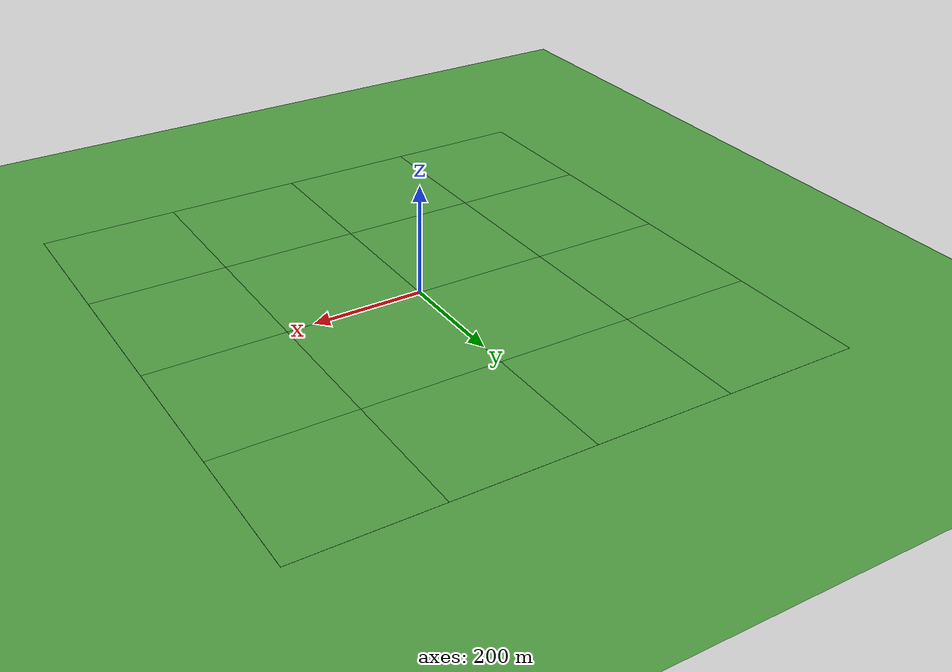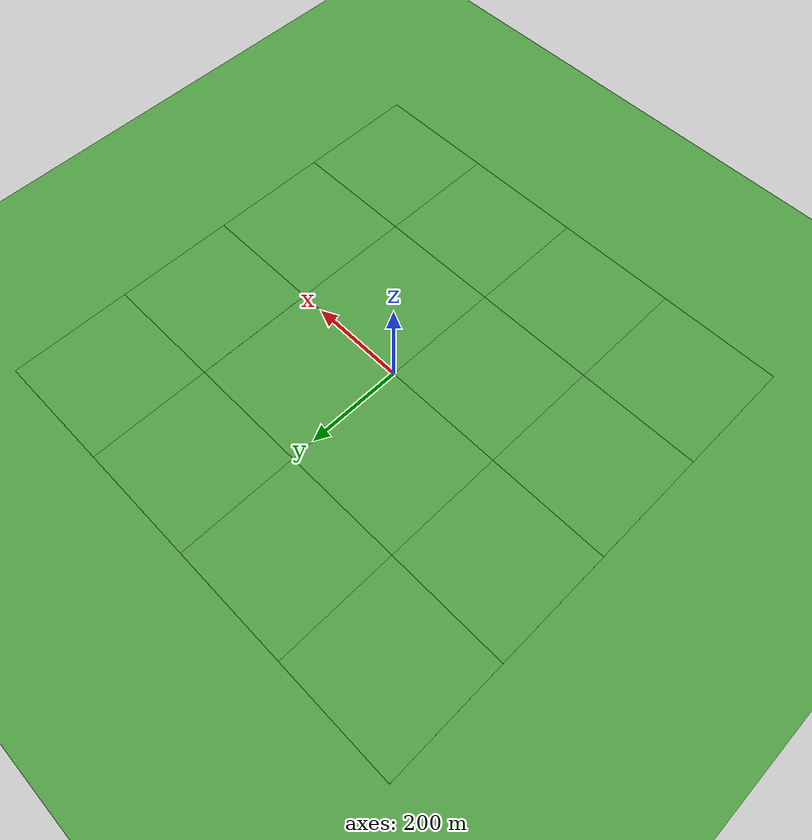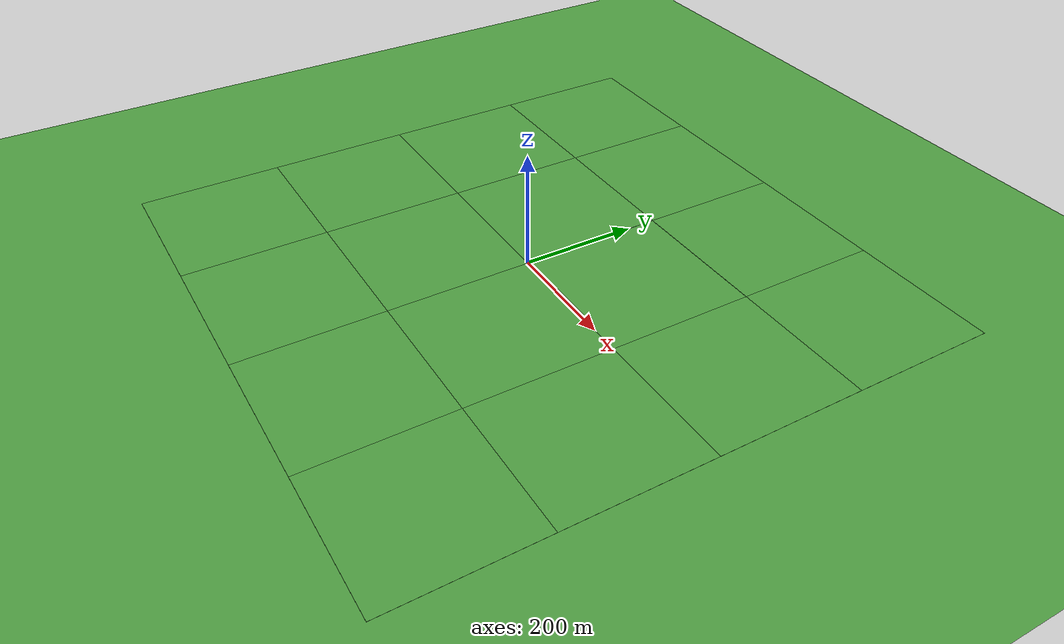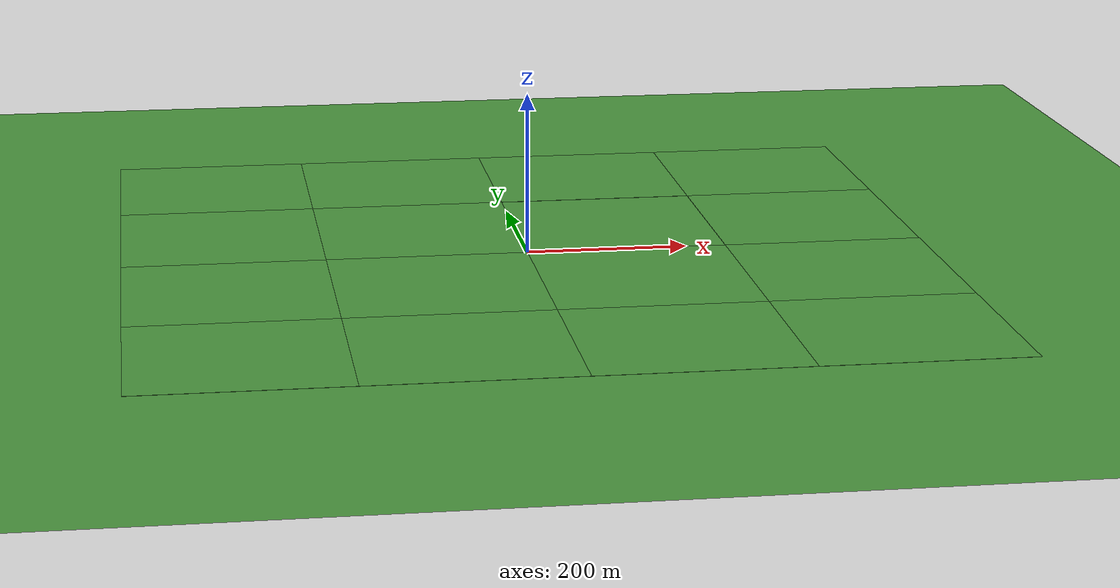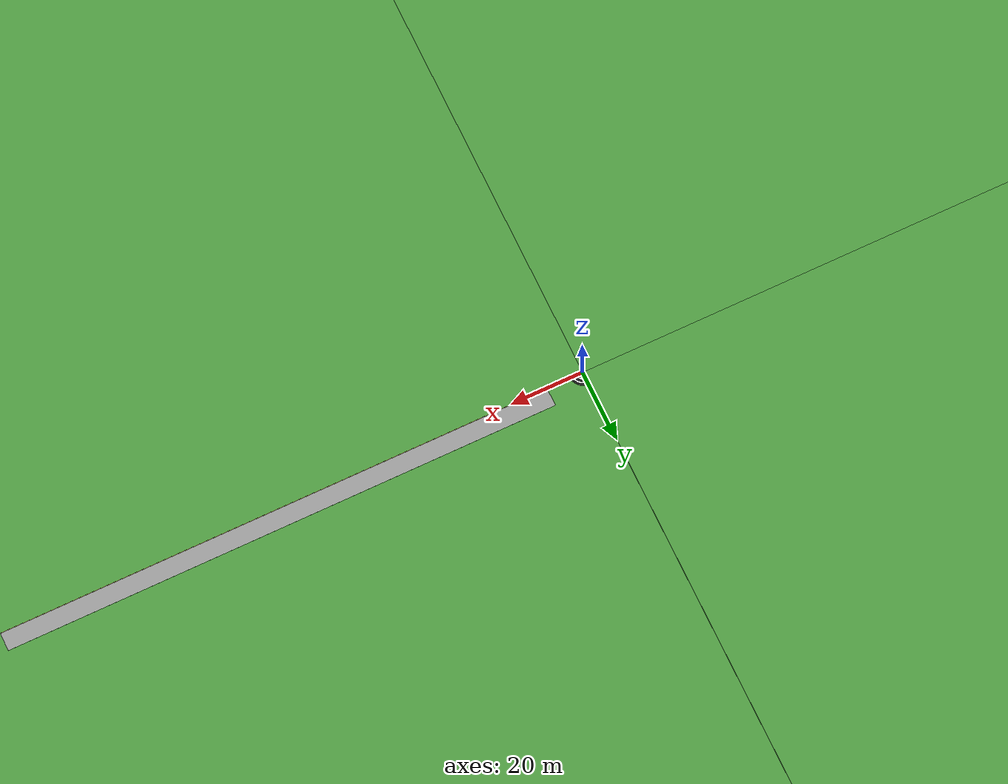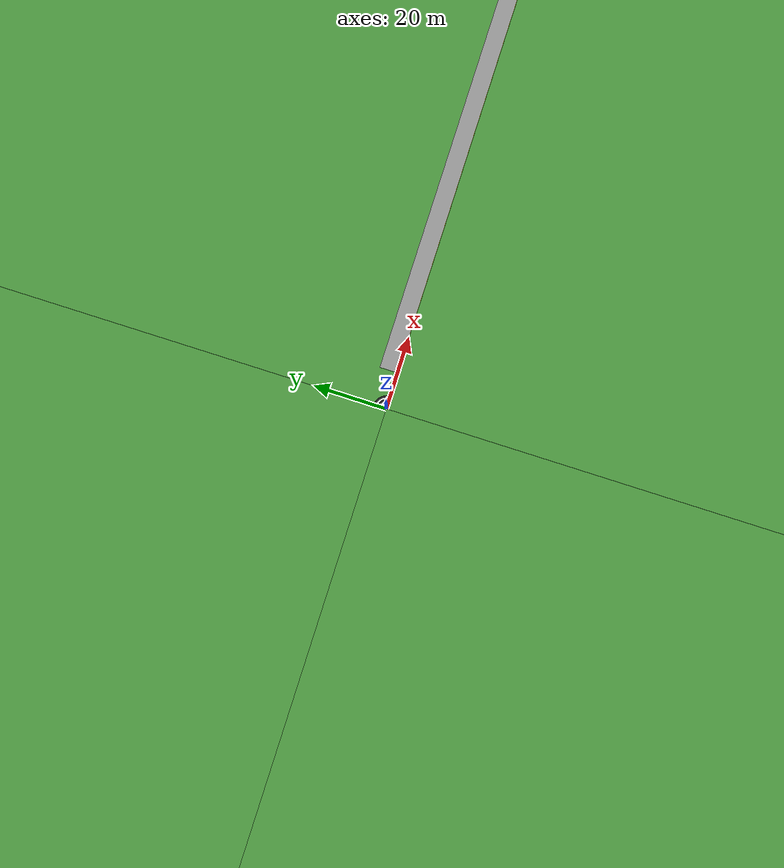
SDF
<?xml version="1.0" ?>
<sdf version="1.4">
  <world name="fw_playground">
    <!-- Place user camera -->
    <gui>
      <camera name="user_camera">
        <pose>-11.660200 -5.942800 6.053900 0.000000 0.443643 0.352194</pose>
      </camera>
    </gui>
    <scene>
      <ambient>0.7 0.7 0.7 1.0</ambient>
      <grid>false</grid>
      <sky>
        <clouds>
          <speed>4</speed>
        </clouds>
      </sky>
    </scene>

    <!-- Only one ROS interface plugin is required per world, as any other plugin can connect a Gazebo
         topic to a ROS topic (or vise versa). -->
    <plugin name="ros_interface_plugin" filename="librotors_gazebo_ros_interface_plugin.so"/>

    <spherical_coordinates>
      <surface_model>EARTH_WGS84</surface_model>
      <latitude_deg>0.0</latitude_deg>
      <longitude_deg>0.0</longitude_deg>
      <elevation>500.0</elevation>
      <heading_deg>180</heading_deg>
    </spherical_coordinates>

    <physics type='ode'>
      <ode>
        <solver>
          <type>quick</type>
          <iters>75</iters>
          <sor>1.3</sor>
        </solver>
        <constraints>
          <cfm>0</cfm>
          <erp>0.2</erp>
          <contact_max_correcting_vel>100</contact_max_correcting_vel>
          <contact_surface_layer>0.001</contact_surface_layer>
        </constraints>
      </ode>
      <max_step_size>0.004</max_step_size>
      <real_time_factor>1</real_time_factor>
      <real_time_update_rate>250</real_time_update_rate>
      <gravity>0 0 -9.8</gravity>
    </physics>

    <!-- Light Source -->
    <light type="directional" name="sun">
      <cast_shadows>false</cast_shadows>
      <pose>0 0 300 0 0 0</pose>
      <diffuse>0.8 0.8 0.8 1</diffuse>
      <specular>0.0 0.0 0.0 1</specular>
      <attenuation>
        <range>1000</range>
        <constant>0.9</constant>
        <linear>0.01</linear>
        <quadratic>0.001</quadratic>
      </attenuation>
      <direction>0.2 0.2 -0.9</direction>
    </light>

    <!-- Ground -->
    <model name="ground_collision_plane">
      <static>true</static>
        <link name='link'>
          <collision name='collision'>
            <geometry>
              <plane>
                <normal>0 0 1</normal>
                <size>1000 1000</size>
              </plane>
            </geometry>
            <surface>
              <friction>
                <ode>
                  <mu>0.2</mu>
                  <mu2>.2</mu2>
                </ode>
              </friction>
              <contact>
                <ode>
                  <kp>1000000</kp>
                  <kd>1</kd>
                </ode>
              </contact>
            </surface>
          </collision>
	</link>
    </model>

    <model name="grass_takeoff_plane">
      <static>true</static>
        <link name='link'>
          <visual name='visual_1'>
            <pose>125 125 0 0 0 0</pose>
            <cast_shadows>false</cast_shadows>
            <geometry>
              <plane>
                <normal>0 0 1</normal>
                <size>250 250</size>
              </plane>
            </geometry>
            <material>
              <script>
                <uri>model://grass_plane/materials/scripts</uri>
                <uri>model://grass_plane/materials/textures</uri>
                <name>vrc/grass</name>
              </script>
            </material>
          </visual>
          <visual name='visual_2'>
            <pose>-125 125 0 0 0 0</pose>
            <cast_shadows>false</cast_shadows>
            <geometry>
              <plane>
                <normal>0 0 1</normal>
                <size>250 250</size>
              </plane>
            </geometry>
            <material>
              <script>
                <uri>model://grass_plane/materials/scripts</uri>
                <uri>model://grass_plane/materials/textures</uri>
                <name>vrc/grass</name>
              </script>
            </material>
          </visual>
          <visual name='visual_3'>
            <pose>-125 -125 0 0 0 0</pose>
            <cast_shadows>false</cast_shadows>
            <geometry>
              <plane>
                <normal>0 0 1</normal>
                <size>250 250</size>
              </plane>
            </geometry>
            <material>
              <script>
                <uri>model://grass_plane/materials/scripts</uri>
                <uri>model://grass_plane/materials/textures</uri>
                <name>vrc/grass</name>
              </script>
            </material>
          </visual>
          <visual name='visual_4'>
            <pose>125 -125 0 0 0 0</pose>
            <cast_shadows>false</cast_shadows>
            <geometry>
              <plane>
                <normal>0 0 1</normal>
                <size>250 250</size>
              </plane>
            </geometry>
            <material>
              <script>
                <uri>model://grass_plane/materials/scripts</uri>
                <uri>model://grass_plane/materials/textures</uri>
                <name>vrc/grass</name>
              </script>
            </material>
          </visual>
          <visual name='visual_5'>
            <pose>375 125 0 0 0 0</pose>
            <cast_shadows>false</cast_shadows>
            <geometry>
              <plane>
                <normal>0 0 1</normal>
                <size>250 250</size>
              </plane>
            </geometry>
            <material>
              <script>
                <uri>model://grass_plane/materials/scripts</uri>
                <uri>model://grass_plane/materials/textures</uri>
                <name>vrc/grass</name>
              </script>
            </material>
          </visual>
          <visual name='visual_6'>
            <pose>375 375 0 0 0 0</pose>
            <cast_shadows>false</cast_shadows>
            <geometry>
              <plane>
                <normal>0 0 1</normal>
                <size>250 250</size>
              </plane>
            </geometry>
            <material>
              <script>
                <uri>model://grass_plane/materials/scripts</uri>
                <uri>model://grass_plane/materials/textures</uri>
                <name>vrc/grass</name>
              </script>
            </material>
          </visual>
          <visual name='visual_7'>
            <pose>125 375 0 0 0 0</pose>
            <cast_shadows>false</cast_shadows>
            <geometry>
              <plane>
                <normal>0 0 1</normal>
                <size>250 250</size>
              </plane>
            </geometry>
            <material>
              <script>
                <uri>model://grass_plane/materials/scripts</uri>
                <uri>model://grass_plane/materials/textures</uri>
                <name>vrc/grass</name>
              </script>
            </material>
          </visual>
          <visual name='visual_8'>
            <pose>-125 375 0 0 0 0</pose>
            <cast_shadows>false</cast_shadows>
            <geometry>
              <plane>
                <normal>0 0 1</normal>
                <size>250 250</size>
              </plane>
            </geometry>
            <material>
              <script>
                <uri>model://grass_plane/materials/scripts</uri>
                <uri>model://grass_plane/materials/textures</uri>
                <name>vrc/grass</name>
              </script>
            </material>
          </visual>
          <visual name='visual_9'>
            <pose>-375 375 0 0 0 0</pose>
            <cast_shadows>false</cast_shadows>
            <geometry>
              <plane>
                <normal>0 0 1</normal>
                <size>250 250</size>
              </plane>
            </geometry>
            <material>
              <script>
                <uri>model://grass_plane/materials/scripts</uri>
                <uri>model://grass_plane/materials/textures</uri>
                <name>vrc/grass</name>
              </script>
            </material>
          </visual>
          <visual name='visual_10'>
            <pose>-375 125 0 0 0 0</pose>
            <cast_shadows>false</cast_shadows>
            <geometry>
              <plane>
                <normal>0 0 1</normal>
                <size>250 250</size>
              </plane>
            </geometry>
            <material>
              <script>
                <uri>model://grass_plane/materials/scripts</uri>
                <uri>model://grass_plane/materials/textures</uri>
                <name>vrc/grass</name>
              </script>
            </material>
          </visual>
          <visual name='visual_11'>
            <pose>-375 -125 0 0 0 0</pose>
            <cast_shadows>false</cast_shadows>
            <geometry>
              <plane>
                <normal>0 0 1</normal>
                <size>250 250</size>
              </plane>
            </geometry>
            <material>
              <script>
                <uri>model://grass_plane/materials/scripts</uri>
                <uri>model://grass_plane/materials/textures</uri>
                <name>vrc/grass</name>
              </script>
            </material>
          </visual>
          <visual name='visual_12'>
            <pose>-375 -375 0 0 0 0</pose>
            <cast_shadows>false</cast_shadows>
            <geometry>
              <plane>
                <normal>0 0 1</normal>
                <size>250 250</size>
              </plane>
            </geometry>
            <material>
              <script>
                <uri>model://grass_plane/materials/scripts</uri>
                <uri>model://grass_plane/materials/textures</uri>
                <name>vrc/grass</name>
              </script>
            </material>
          </visual>
          <visual name='visual_13'>
            <pose>-125 -375 0 0 0 0</pose>
            <cast_shadows>false</cast_shadows>
            <geometry>
              <plane>
                <normal>0 0 1</normal>
                <size>250 250</size>
              </plane>
            </geometry>
            <material>
              <script>
                <uri>model://grass_plane/materials/scripts</uri>
                <uri>model://grass_plane/materials/textures</uri>
                <name>vrc/grass</name>
              </script>
            </material>
          </visual>
          <visual name='visual_14'>
            <pose>125 -375 0 0 0 0</pose>
            <cast_shadows>false</cast_shadows>
            <geometry>
              <plane>
                <normal>0 0 1</normal>
                <size>250 250</size>
              </plane>
            </geometry>
            <material>
              <script>
                <uri>model://grass_plane/materials/scripts</uri>
                <uri>model://grass_plane/materials/textures</uri>
                <name>vrc/grass</name>
              </script>
            </material>
          </visual>
          <visual name='visual_15'>
            <pose>375 -375 0 0 0 0</pose>
            <cast_shadows>false</cast_shadows>
            <geometry>
              <plane>
                <normal>0 0 1</normal>
                <size>250 250</size>
              </plane>
            </geometry>
            <material>
              <script>
                <uri>model://grass_plane/materials/scripts</uri>
                <uri>model://grass_plane/materials/textures</uri>
                <name>vrc/grass</name>
              </script>
            </material>
          </visual>
          <visual name='visual_16'>
            <pose>375 -125 0 0 0 0</pose>
            <cast_shadows>false</cast_shadows>
            <geometry>
              <plane>
                <normal>0 0 1</normal>
                <size>250 250</size>
              </plane>
            </geometry>
            <material>
              <script>
                <uri>model://grass_plane/materials/scripts</uri>
                <uri>model://grass_plane/materials/textures</uri>
                <name>vrc/grass</name>
              </script>
            </material>
          </visual>
        </link>
    </model>

    <model name="runway">
      <static>true</static>
        <link name='link'>
          <visual name='runway'>
            <pose>85 0 0 0 0 0</pose>
            <cast_shadows>true</cast_shadows>
            <geometry>
              <box>
                <size>150 10 0.04</size>
              </box>
            </geometry>
            <material>
              <script>
                <uri>file://media/materials/scripts/gazebo.material</uri>
                <name>Gazebo/Grey</name>
              </script>
            </material>
          </visual>
          <visual name='runway_line'>
            <pose>85 0 0 0 0 0</pose>
            <cast_shadows>true</cast_shadows>
            <geometry>
              <box>
                <size>150 0.15 0.05</size>
              </box>
            </geometry>
            <material>
              <script>
                <uri>file://media/materials/scripts/gazebo.material</uri>
                <name>Gazebo/Yellow</name>
              </script>
            </material>
          </visual>
        </link>
    </model>

    <model name="bulls_eye">
      <static>true</static>
        <link name='link'>
          <visual name='bulls_eye_r1'>
            <pose>0 0 0 0 0 0</pose>
            <cast_shadows>false</cast_shadows>
            <geometry>
              <cylinder>
                <radius>0.5</radius>
                <length>0.12</length>
              </cylinder>
            </geometry>
            <material>
              <script>
                <uri>file://media/materials/scripts/gazebo.material</uri>
                <name>Gazebo/Black</name>
              </script>
            </material>
          </visual>
          <visual name='bulls_eye_r2'>
            <pose>0 0 0 0 0 0</pose>
            <cast_shadows>false</cast_shadows>
            <geometry>
              <cylinder>
                <radius>1</radius>
                <length>0.11</length>
              </cylinder>
            </geometry>
            <material>
              <script>
                <uri>file://media/materials/scripts/gazebo.material</uri>
                <name>Gazebo/White</name>
              </script>
            </material>
          </visual>
          <visual name='bulls_eye_r3'>
            <pose>0 0 0 0 0 0</pose>
            <cast_shadows>false</cast_shadows>
            <geometry>
              <cylinder>
                <radius>1.5</radius>
                <length>0.1</length>
              </cylinder>
            </geometry>
            <material>
              <script>
                <uri>file://media/materials/scripts/gazebo.material</uri>
                <name>Gazebo/Black</name>
              </script>
            </material>
          </visual>
          <visual name='bulls_eye_r4'>
            <pose>0 0 0 0 0 0</pose>
            <cast_shadows>false</cast_shadows>
            <geometry>
              <cylinder>
                <radius>2</radius>
                <length>0.09</length>
              </cylinder>
            </geometry>
            <material>
              <script>
                <uri>file://media/materials/scripts/gazebo.material</uri>
                <name>Gazebo/White</name>
              </script>
            </material>
          </visual>
          <visual name='bulls_eye_r5'>
            <pose>0 0 0 0 0 0</pose>
            <cast_shadows>false</cast_shadows>
            <geometry>
              <cylinder>
                <radius>2.5</radius>
                <length>0.08</length>
              </cylinder>
            </geometry>
            <material>
              <script>
                <uri>file://media/materials/scripts/gazebo.material</uri>
                <name>Gazebo/Black</name>
              </script>
            </material>
          </visual>
          <visual name='bulls_eye_r6'>
            <pose>0 0 0 0 0 0</pose>
            <cast_shadows>false</cast_shadows>
            <geometry>
              <cylinder>
                <radius>3</radius>
                <length>0.07</length>
              </cylinder>
            </geometry>
            <material>
              <script>
                <uri>file://media/materials/scripts/gazebo.material</uri>
                <name>Gazebo/White</name>
              </script>
            </material>
          </visual>
          <visual name='bulls_eye_r7'>
            <pose>0 0 0 0 0 0</pose>
            <cast_shadows>false</cast_shadows>
            <geometry>
              <cylinder>
                <radius>3.5</radius>
                <length>0.06</length>
              </cylinder>
            </geometry>
            <material>
              <script>
                <uri>file://media/materials/scripts/gazebo.material</uri>
                <name>Gazebo/Black</name>
              </script>
            </material>
          </visual>
        </link>
    </model>

    <model name="payload">
      <static>true</static>
        <link name='interception_point'>
          <visual name='interception_point_vis'>
            <pose>0 0 2 0 0 0</pose>
            <cast_shadows>false</cast_shadows>
            <geometry>
              <cylinder>
                <radius>0.25</radius>
                <length>0.5</length>
              </cylinder>
            </geometry>
            <material>
              <script>
                <uri>file://media/materials/scripts/gazebo.material</uri>
                <name>Gazebo/Red</name>
              </script>
            </material>
          </visual>
        </link>
    </model>

    <!-- Pylons -->

    </world>
</sdf>
